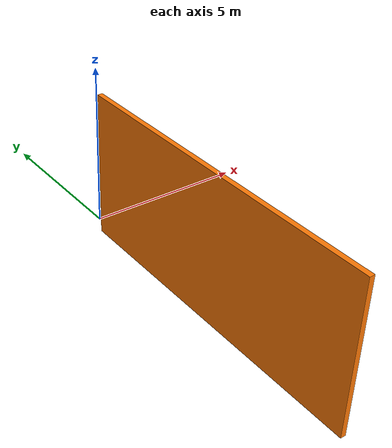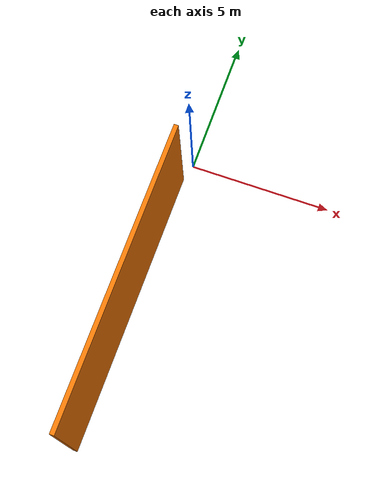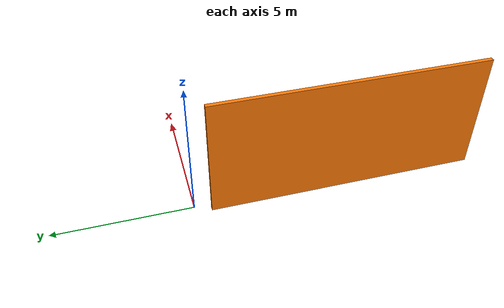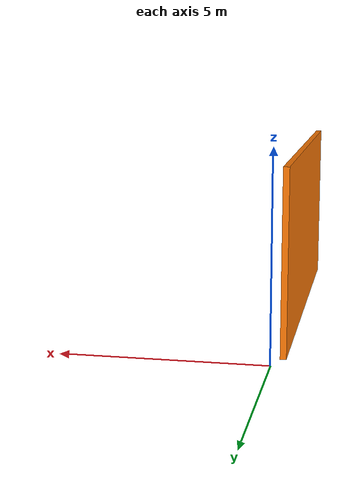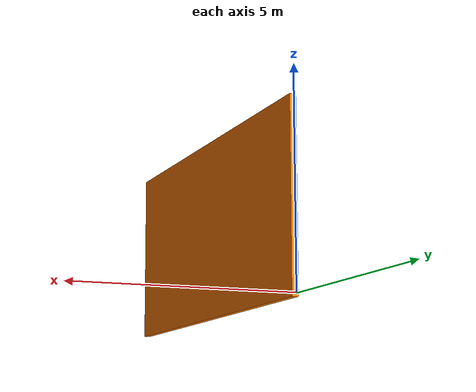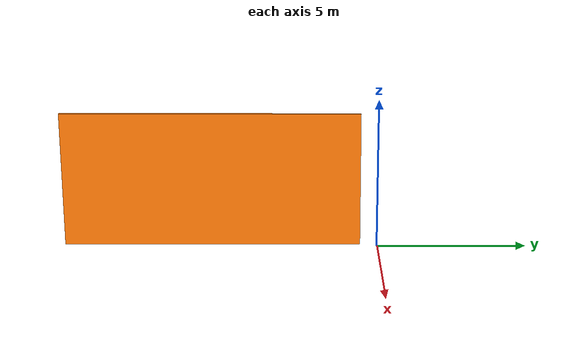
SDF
<?xml version="1.0"?>
<sdf version="1.5">
  <model name="wall">
    <pose>-0.23 -5.575 0 0 -0 0</pose>
    <link name="Wall_0">
      <collision name="Wall_0_Collision">
        <geometry>
          <box>
            <size>10 0.15 4.5</size>
          </box>
        </geometry>
        <pose>0 0 2.25 0 -0 0</pose>
      </collision>
      <visual name="Wall_0_Visual">
        <pose>0 0 2.25 0 -0 0</pose>
        <geometry>
          <box>
            <size>10 0.15 4.5</size>
          </box>
        </geometry>
        <material>
          <script>
            <uri>model://wall/materials/scripts</uri>
            <uri>model://wall/materials/textures</uri>
            <name>Wall/NiceWall</name>
          </script>
          <ambient>0.996078 0.47451 0.0196078 1</ambient>
        </material>
      </visual>
      <pose>0 -0 0 0 0 -1.5708</pose>
    </link>
    <static>1</static>
  </model>
</sdf>
